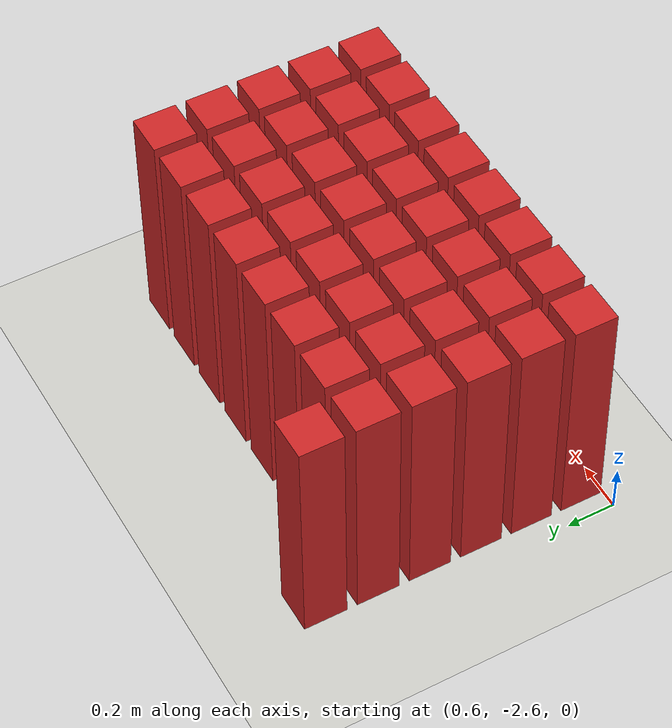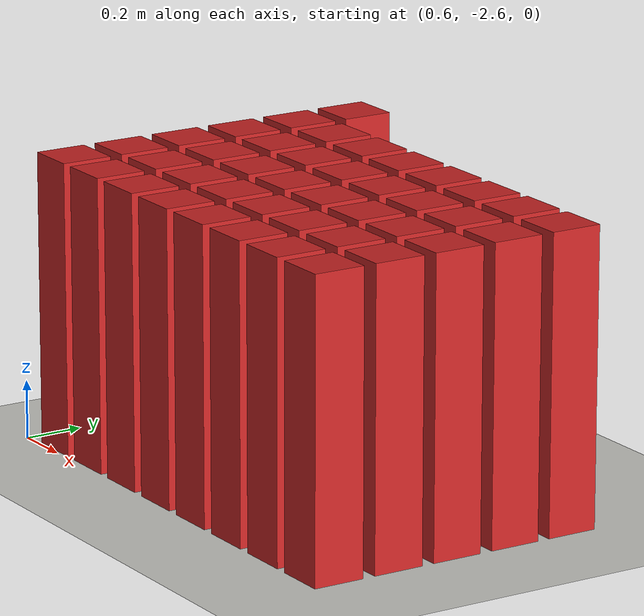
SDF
<sdf version="1.7">
 <world name="default">
  <model name="ground_plane">
   <static>1</static>
   <link name="link">
    <collision name="collision">
     <geometry><plane><normal>0 0 1</normal><size>100 100</size></plane></geometry>
     <surface>
      <contact><collide_bitmask>65535</collide_bitmask></contact>
      <friction><ode><mu>100</mu><mu2>50</mu2></ode></friction>
     </surface>
    </collision>
    <visual name="visual">
     <cast_shadows>0</cast_shadows>
     <geometry><plane><normal>0 0 1</normal><size>100 100</size></plane></geometry>
     <material>
      <script><uri>file://media/materials/scripts/gazebo.material</uri><name>Gazebo/CeilingTiled</name></script>
     </material>
    </visual>
   </link>
  </model>
  <model name="wall15">
   <link name="link">
    <pose>0 0 0.5 0 -0 0</pose>
    <inertial>
     <mass>0.5167</mass>
     <inertia>
      <ixx>0.000861167</ixx>
      <ixy>0</ixy>
      <ixz>0</ixz>
      <iyy>0.000861167</iyy>
      <iyz>0</iyz>
      <izz>0.000861167</izz>
     </inertia>
    </inertial>
    <collision name="collision">
     <geometry><box><size>0.21 0.21 1</size></box></geometry>
     <surface>
      <contact>
       <poissons_ratio>0.347</poissons_ratio>
       <elastic_modulus>8.8e+09</elastic_modulus>
       <ode><kp>100000</kp><kd>100</kd><max_vel>100</max_vel><min_depth>0.001</min_depth></ode>
      </contact>
      <friction>
       <torsional>
        <coefficient>1</coefficient>
        <use_patch_radius>0</use_patch_radius>
        <surface_radius>0.01</surface_radius>
       </torsional>
      </friction>
     </surface>
    </collision>
    <visual name="visual">
     <geometry><box><size>0.175 0.175 1</size></box></geometry>
     <material>
      <script><uri>file://media/materials/scripts/gazebo.material</uri><name>Gazebo/Red</name></script>
     </material>
    </visual>
   </link>
   <pose>0.76087 -2.5 0 0 -0 0</pose>
  </model>
  <model name="wall16">
   <link name="link">
    <pose>0 0 0.5 0 -0 0</pose>
    <inertial>
     <mass>0.5167</mass>
     <inertia>
      <ixx>0.000861167</ixx>
      <ixy>0</ixy>
      <ixz>0</ixz>
      <iyy>0.000861167</iyy>
      <iyz>0</iyz>
      <izz>0.000861167</izz>
     </inertia>
    </inertial>
    <collision name="collision">
     <geometry><box><size>0.21 0.21 1</size></box></geometry>
     <surface>
      <contact>
       <poissons_ratio>0.347</poissons_ratio>
       <elastic_modulus>8.8e+09</elastic_modulus>
       <ode><kp>100000</kp><kd>100</kd><max_vel>100</max_vel><min_depth>0.001</min_depth></ode>
      </contact>
      <friction>
       <torsional>
        <coefficient>1</coefficient>
        <use_patch_radius>0</use_patch_radius>
        <surface_radius>0.01</surface_radius>
       </torsional>
      </friction>
     </surface>
    </collision>
    <visual name="visual">
     <geometry><box><size>0.175 0.175 1</size></box></geometry>
     <material>
      <script><uri>file://media/materials/scripts/gazebo.material</uri><name>Gazebo/Red</name></script>
     </material>
    </visual>
   </link>
   <pose>0.978261 -2.5 0 0 -0 0</pose>
  </model>
  <model name="wall17">
   <link name="link">
    <pose>0 0 0.5 0 -0 0</pose>
    <inertial>
     <mass>0.5167</mass>
     <inertia>
      <ixx>0.000861167</ixx>
      <ixy>0</ixy>
      <ixz>0</ixz>
      <iyy>0.000861167</iyy>
      <iyz>0</iyz>
      <izz>0.000861167</izz>
     </inertia>
    </inertial>
    <collision name="collision">
     <geometry><box><size>0.21 0.21 1</size></box></geometry>
     <surface>
      <contact>
       <poissons_ratio>0.347</poissons_ratio>
       <elastic_modulus>8.8e+09</elastic_modulus>
       <ode><kp>100000</kp><kd>100</kd><max_vel>100</max_vel><min_depth>0.001</min_depth></ode>
      </contact>
      <friction>
       <torsional>
        <coefficient>1</coefficient>
        <use_patch_radius>0</use_patch_radius>
        <surface_radius>0.01</surface_radius>
       </torsional>
      </friction>
     </surface>
    </collision>
    <visual name="visual">
     <geometry><box><size>0.175 0.175 1</size></box></geometry>
     <material>
      <script><uri>file://media/materials/scripts/gazebo.material</uri><name>Gazebo/Red</name></script>
     </material>
    </visual>
   </link>
   <pose>1.19565 -2.5 0 0 -0 0</pose>
  </model>
  <model name="wall18">
   <link name="link">
    <pose>0 0 0.5 0 -0 0</pose>
    <inertial>
     <mass>0.5167</mass>
     <inertia>
      <ixx>0.000861167</ixx>
      <ixy>0</ixy>
      <ixz>0</ixz>
      <iyy>0.000861167</iyy>
      <iyz>0</iyz>
      <izz>0.000861167</izz>
     </inertia>
    </inertial>
    <collision name="collision">
     <geometry><box><size>0.21 0.21 1</size></box></geometry>
     <surface>
      <contact>
       <poissons_ratio>0.347</poissons_ratio>
       <elastic_modulus>8.8e+09</elastic_modulus>
       <ode><kp>100000</kp><kd>100</kd><max_vel>100</max_vel><min_depth>0.001</min_depth></ode>
      </contact>
      <friction>
       <torsional>
        <coefficient>1</coefficient>
        <use_patch_radius>0</use_patch_radius>
        <surface_radius>0.01</surface_radius>
       </torsional>
      </friction>
     </surface>
    </collision>
    <visual name="visual">
     <geometry><box><size>0.175 0.175 1</size></box></geometry>
     <material>
      <script><uri>file://media/materials/scripts/gazebo.material</uri><name>Gazebo/Red</name></script>
     </material>
    </visual>
   </link>
   <pose>1.41304 -2.5 0 0 -0 0</pose>
  </model>
  <model name="wall19">
   <link name="link">
    <pose>0 0 0.5 0 -0 0</pose>
    <inertial>
     <mass>0.5167</mass>
     <inertia>
      <ixx>0.000861167</ixx>
      <ixy>0</ixy>
      <ixz>0</ixz>
      <iyy>0.000861167</iyy>
      <iyz>0</iyz>
      <izz>0.000861167</izz>
     </inertia>
    </inertial>
    <collision name="collision">
     <geometry><box><size>0.21 0.21 1</size></box></geometry>
     <surface>
      <contact>
       <poissons_ratio>0.347</poissons_ratio>
       <elastic_modulus>8.8e+09</elastic_modulus>
       <ode><kp>100000</kp><kd>100</kd><max_vel>100</max_vel><min_depth>0.001</min_depth></ode>
      </contact>
      <friction>
       <torsional>
        <coefficient>1</coefficient>
        <use_patch_radius>0</use_patch_radius>
        <surface_radius>0.01</surface_radius>
       </torsional>
      </friction>
     </surface>
    </collision>
    <visual name="visual">
     <geometry><box><size>0.175 0.175 1</size></box></geometry>
     <material>
      <script><uri>file://media/materials/scripts/gazebo.material</uri><name>Gazebo/Red</name></script>
     </material>
    </visual>
   </link>
   <pose>1.63043 -2.5 0 0 -0 0</pose>
  </model>
  <model name="wall20">
   <link name="link">
    <pose>0 0 0.5 0 -0 0</pose>
    <inertial>
     <mass>0.5167</mass>
     <inertia>
      <ixx>0.000861167</ixx>
      <ixy>0</ixy>
      <ixz>0</ixz>
      <iyy>0.000861167</iyy>
      <iyz>0</iyz>
      <izz>0.000861167</izz>
     </inertia>
    </inertial>
    <collision name="collision">
     <geometry><box><size>0.21 0.21 1</size></box></geometry>
     <surface>
      <contact>
       <poissons_ratio>0.347</poissons_ratio>
       <elastic_modulus>8.8e+09</elastic_modulus>
       <ode><kp>100000</kp><kd>100</kd><max_vel>100</max_vel><min_depth>0.001</min_depth></ode>
      </contact>
      <friction>
       <torsional>
        <coefficient>1</coefficient>
        <use_patch_radius>0</use_patch_radius>
        <surface_radius>0.01</surface_radius>
       </torsional>
      </friction>
     </surface>
    </collision>
    <visual name="visual">
     <geometry><box><size>0.175 0.175 1</size></box></geometry>
     <material>
      <script><uri>file://media/materials/scripts/gazebo.material</uri><name>Gazebo/Red</name></script>
     </material>
    </visual>
   </link>
   <pose>1.84783 -2.5 0 0 -0 0</pose>
  </model>
  <model name="wall21">
   <link name="link">
    <pose>0 0 0.5 0 -0 0</pose>
    <inertial>
     <mass>0.5167</mass>
     <inertia>
      <ixx>0.000861167</ixx>
      <ixy>0</ixy>
      <ixz>0</ixz>
      <iyy>0.000861167</iyy>
      <iyz>0</iyz>
      <izz>0.000861167</izz>
     </inertia>
    </inertial>
    <collision name="collision">
     <geometry><box><size>0.21 0.21 1</size></box></geometry>
     <surface>
      <contact>
       <poissons_ratio>0.347</poissons_ratio>
       <elastic_modulus>8.8e+09</elastic_modulus>
       <ode><kp>100000</kp><kd>100</kd><max_vel>100</max_vel><min_depth>0.001</min_depth></ode>
      </contact>
      <friction>
       <torsional>
        <coefficient>1</coefficient>
        <use_patch_radius>0</use_patch_radius>
        <surface_radius>0.01</surface_radius>
       </torsional>
      </friction>
     </surface>
    </collision>
    <visual name="visual">
     <geometry><box><size>0.175 0.175 1</size></box></geometry>
     <material>
      <script><uri>file://media/materials/scripts/gazebo.material</uri><name>Gazebo/Red</name></script>
     </material>
    </visual>
   </link>
   <pose>2.06522 -2.5 0 0 -0 0</pose>
  </model>
  <model name="wall22">
   <link name="link">
    <pose>0 0 0.5 0 -0 0</pose>
    <inertial>
     <mass>0.5167</mass>
     <inertia>
      <ixx>0.000861167</ixx>
      <ixy>0</ixy>
      <ixz>0</ixz>
      <iyy>0.000861167</iyy>
      <iyz>0</iyz>
      <izz>0.000861167</izz>
     </inertia>
    </inertial>
    <collision name="collision">
     <geometry><box><size>0.21 0.21 1</size></box></geometry>
     <surface>
      <contact>
       <poissons_ratio>0.347</poissons_ratio>
       <elastic_modulus>8.8e+09</elastic_modulus>
       <ode><kp>100000</kp><kd>100</kd><max_vel>100</max_vel><min_depth>0.001</min_depth></ode>
      </contact>
      <friction>
       <torsional>
        <coefficient>1</coefficient>
        <use_patch_radius>0</use_patch_radius>
        <surface_radius>0.01</surface_radius>
       </torsional>
      </friction>
     </surface>
    </collision>
    <visual name="visual">
     <geometry><box><size>0.175 0.175 1</size></box></geometry>
     <material>
      <script><uri>file://media/materials/scripts/gazebo.material</uri><name>Gazebo/Red</name></script>
     </material>
    </visual>
   </link>
   <pose>2.28261 -2.5 0 0 -0 0</pose>
  </model>
  <model name="wall38">
   <link name="link">
    <pose>0 0 0.5 0 -0 0</pose>
    <inertial>
     <mass>0.5167</mass>
     <inertia>
      <ixx>0.000861167</ixx>
      <ixy>0</ixy>
      <ixz>0</ixz>
      <iyy>0.000861167</iyy>
      <iyz>0</iyz>
      <izz>0.000861167</izz>
     </inertia>
    </inertial>
    <collision name="collision">
     <geometry><box><size>0.21 0.21 1</size></box></geometry>
     <surface>
      <contact>
       <poissons_ratio>0.347</poissons_ratio>
       <elastic_modulus>8.8e+09</elastic_modulus>
       <ode><kp>100000</kp><kd>100</kd><max_vel>100</max_vel><min_depth>0.001</min_depth></ode>
      </contact>
      <friction>
       <torsional>
        <coefficient>1</coefficient>
        <use_patch_radius>0</use_patch_radius>
        <surface_radius>0.01</surface_radius>
       </torsional>
      </friction>
     </surface>
    </collision>
    <visual name="visual">
     <geometry><box><size>0.175 0.175 1</size></box></geometry>
     <material>
      <script><uri>file://media/materials/scripts/gazebo.material</uri><name>Gazebo/Red</name></script>
     </material>
    </visual>
   </link>
   <pose>0.76087 -2.28261 0 0 -0 0</pose>
  </model>
  <model name="wall39">
   <link name="link">
    <pose>0 0 0.5 0 -0 0</pose>
    <inertial>
     <mass>0.5167</mass>
     <inertia>
      <ixx>0.000861167</ixx>
      <ixy>0</ixy>
      <ixz>0</ixz>
      <iyy>0.000861167</iyy>
      <iyz>0</iyz>
      <izz>0.000861167</izz>
     </inertia>
    </inertial>
    <collision name="collision">
     <geometry><box><size>0.21 0.21 1</size></box></geometry>
     <surface>
      <contact>
       <poissons_ratio>0.347</poissons_ratio>
       <elastic_modulus>8.8e+09</elastic_modulus>
       <ode><kp>100000</kp><kd>100</kd><max_vel>100</max_vel><min_depth>0.001</min_depth></ode>
      </contact>
      <friction>
       <torsional>
        <coefficient>1</coefficient>
        <use_patch_radius>0</use_patch_radius>
        <surface_radius>0.01</surface_radius>
       </torsional>
      </friction>
     </surface>
    </collision>
    <visual name="visual">
     <geometry><box><size>0.175 0.175 1</size></box></geometry>
     <material>
      <script><uri>file://media/materials/scripts/gazebo.material</uri><name>Gazebo/Red</name></script>
     </material>
    </visual>
   </link>
   <pose>0.978261 -2.28261 0 0 -0 0</pose>
  </model>
  <model name="wall40">
   <link name="link">
    <pose>0 0 0.5 0 -0 0</pose>
    <inertial>
     <mass>0.5167</mass>
     <inertia>
      <ixx>0.000861167</ixx>
      <ixy>0</ixy>
      <ixz>0</ixz>
      <iyy>0.000861167</iyy>
      <iyz>0</iyz>
      <izz>0.000861167</izz>
     </inertia>
    </inertial>
    <collision name="collision">
     <geometry><box><size>0.21 0.21 1</size></box></geometry>
     <surface>
      <contact>
       <poissons_ratio>0.347</poissons_ratio>
       <elastic_modulus>8.8e+09</elastic_modulus>
       <ode><kp>100000</kp><kd>100</kd><max_vel>100</max_vel><min_depth>0.001</min_depth></ode>
      </contact>
      <friction>
       <torsional>
        <coefficient>1</coefficient>
        <use_patch_radius>0</use_patch_radius>
        <surface_radius>0.01</surface_radius>
       </torsional>
      </friction>
     </surface>
    </collision>
    <visual name="visual">
     <geometry><box><size>0.175 0.175 1</size></box></geometry>
     <material>
      <script><uri>file://media/materials/scripts/gazebo.material</uri><name>Gazebo/Red</name></script>
     </material>
    </visual>
   </link>
   <pose>1.19565 -2.28261 0 0 -0 0</pose>
  </model>
  <model name="wall41">
   <link name="link">
    <pose>0 0 0.5 0 -0 0</pose>
    <inertial>
     <mass>0.5167</mass>
     <inertia>
      <ixx>0.000861167</ixx>
      <ixy>0</ixy>
      <ixz>0</ixz>
      <iyy>0.000861167</iyy>
      <iyz>0</iyz>
      <izz>0.000861167</izz>
     </inertia>
    </inertial>
    <collision name="collision">
     <geometry><box><size>0.21 0.21 1</size></box></geometry>
     <surface>
      <contact>
       <poissons_ratio>0.347</poissons_ratio>
       <elastic_modulus>8.8e+09</elastic_modulus>
       <ode><kp>100000</kp><kd>100</kd><max_vel>100</max_vel><min_depth>0.001</min_depth></ode>
      </contact>
      <friction>
       <torsional>
        <coefficient>1</coefficient>
        <use_patch_radius>0</use_patch_radius>
        <surface_radius>0.01</surface_radius>
       </torsional>
      </friction>
     </surface>
    </collision>
    <visual name="visual">
     <geometry><box><size>0.175 0.175 1</size></box></geometry>
     <material>
      <script><uri>file://media/materials/scripts/gazebo.material</uri><name>Gazebo/Red</name></script>
     </material>
    </visual>
   </link>
   <pose>1.41304 -2.28261 0 0 -0 0</pose>
  </model>
  <model name="wall42">
   <link name="link">
    <pose>0 0 0.5 0 -0 0</pose>
    <inertial>
     <mass>0.5167</mass>
     <inertia>
      <ixx>0.000861167</ixx>
      <ixy>0</ixy>
      <ixz>0</ixz>
      <iyy>0.000861167</iyy>
      <iyz>0</iyz>
      <izz>0.000861167</izz>
     </inertia>
    </inertial>
    <collision name="collision">
     <geometry><box><size>0.21 0.21 1</size></box></geometry>
     <surface>
      <contact>
       <poissons_ratio>0.347</poissons_ratio>
       <elastic_modulus>8.8e+09</elastic_modulus>
       <ode><kp>100000</kp><kd>100</kd><max_vel>100</max_vel><min_depth>0.001</min_depth></ode>
      </contact>
      <friction>
       <torsional>
        <coefficient>1</coefficient>
        <use_patch_radius>0</use_patch_radius>
        <surface_radius>0.01</surface_radius>
       </torsional>
      </friction>
     </surface>
    </collision>
    <visual name="visual">
     <geometry><box><size>0.175 0.175 1</size></box></geometry>
     <material>
      <script><uri>file://media/materials/scripts/gazebo.material</uri><name>Gazebo/Red</name></script>
     </material>
    </visual>
   </link>
   <pose>1.63043 -2.28261 0 0 -0 0</pose>
  </model>
  <model name="wall43">
   <link name="link">
    <pose>0 0 0.5 0 -0 0</pose>
    <inertial>
     <mass>0.5167</mass>
     <inertia>
      <ixx>0.000861167</ixx>
      <ixy>0</ixy>
      <ixz>0</ixz>
      <iyy>0.000861167</iyy>
      <iyz>0</iyz>
      <izz>0.000861167</izz>
     </inertia>
    </inertial>
    <collision name="collision">
     <geometry><box><size>0.21 0.21 1</size></box></geometry>
     <surface>
      <contact>
       <poissons_ratio>0.347</poissons_ratio>
       <elastic_modulus>8.8e+09</elastic_modulus>
       <ode><kp>100000</kp><kd>100</kd><max_vel>100</max_vel><min_depth>0.001</min_depth></ode>
      </contact>
      <friction>
       <torsional>
        <coefficient>1</coefficient>
        <use_patch_radius>0</use_patch_radius>
        <surface_radius>0.01</surface_radius>
       </torsional>
      </friction>
     </surface>
    </collision>
    <visual name="visual">
     <geometry><box><size>0.175 0.175 1</size></box></geometry>
     <material>
      <script><uri>file://media/materials/scripts/gazebo.material</uri><name>Gazebo/Red</name></script>
     </material>
    </visual>
   </link>
   <pose>1.84783 -2.28261 0 0 -0 0</pose>
  </model>
  <model name="wall44">
   <link name="link">
    <pose>0 0 0.5 0 -0 0</pose>
    <inertial>
     <mass>0.5167</mass>
     <inertia>
      <ixx>0.000861167</ixx>
      <ixy>0</ixy>
      <ixz>0</ixz>
      <iyy>0.000861167</iyy>
      <iyz>0</iyz>
      <izz>0.000861167</izz>
     </inertia>
    </inertial>
    <collision name="collision">
     <geometry><box><size>0.21 0.21 1</size></box></geometry>
     <surface>
      <contact>
       <poissons_ratio>0.347</poissons_ratio>
       <elastic_modulus>8.8e+09</elastic_modulus>
       <ode><kp>100000</kp><kd>100</kd><max_vel>100</max_vel><min_depth>0.001</min_depth></ode>
      </contact>
      <friction>
       <torsional>
        <coefficient>1</coefficient>
        <use_patch_radius>0</use_patch_radius>
        <surface_radius>0.01</surface_radius>
       </torsional>
      </friction>
     </surface>
    </collision>
    <visual name="visual">
     <geometry><box><size>0.175 0.175 1</size></box></geometry>
     <material>
      <script><uri>file://media/materials/scripts/gazebo.material</uri><name>Gazebo/Red</name></script>
     </material>
    </visual>
   </link>
   <pose>2.06522 -2.28261 0 0 -0 0</pose>
  </model>
  <model name="wall45">
   <link name="link">
    <pose>0 0 0.5 0 -0 0</pose>
    <inertial>
     <mass>0.5167</mass>
     <inertia>
      <ixx>0.000861167</ixx>
      <ixy>0</ixy>
      <ixz>0</ixz>
      <iyy>0.000861167</iyy>
      <iyz>0</iyz>
      <izz>0.000861167</izz>
     </inertia>
    </inertial>
    <collision name="collision">
     <geometry><box><size>0.21 0.21 1</size></box></geometry>
     <surface>
      <contact>
       <poissons_ratio>0.347</poissons_ratio>
       <elastic_modulus>8.8e+09</elastic_modulus>
       <ode><kp>100000</kp><kd>100</kd><max_vel>100</max_vel><min_depth>0.001</min_depth></ode>
      </contact>
      <friction>
       <torsional>
        <coefficient>1</coefficient>
        <use_patch_radius>0</use_patch_radius>
        <surface_radius>0.01</surface_radius>
       </torsional>
      </friction>
     </surface>
    </collision>
    <visual name="visual">
     <geometry><box><size>0.175 0.175 1</size></box></geometry>
     <material>
      <script><uri>file://media/materials/scripts/gazebo.material</uri><name>Gazebo/Red</name></script>
     </material>
    </visual>
   </link>
   <pose>2.28261 -2.28261 0 0 -0 0</pose>
  </model>
  <model name="wall61">
   <link name="link">
    <pose>0 0 0.5 0 -0 0</pose>
    <inertial>
     <mass>0.5167</mass>
     <inertia>
      <ixx>0.000861167</ixx>
      <ixy>0</ixy>
      <ixz>0</ixz>
      <iyy>0.000861167</iyy>
      <iyz>0</iyz>
      <izz>0.000861167</izz>
     </inertia>
    </inertial>
    <collision name="collision">
     <geometry><box><size>0.21 0.21 1</size></box></geometry>
     <surface>
      <contact>
       <poissons_ratio>0.347</poissons_ratio>
       <elastic_modulus>8.8e+09</elastic_modulus>
       <ode><kp>100000</kp><kd>100</kd><max_vel>100</max_vel><min_depth>0.001</min_depth></ode>
      </contact>
      <friction>
       <torsional>
        <coefficient>1</coefficient>
        <use_patch_radius>0</use_patch_radius>
        <surface_radius>0.01</surface_radius>
       </torsional>
      </friction>
     </surface>
    </collision>
    <visual name="visual">
     <geometry><box><size>0.175 0.175 1</size></box></geometry>
     <material>
      <script><uri>file://media/materials/scripts/gazebo.material</uri><name>Gazebo/Red</name></script>
     </material>
    </visual>
   </link>
   <pose>0.76087 -2.06522 0 0 -0 0</pose>
  </model>
  <model name="wall62">
   <link name="link">
    <pose>0 0 0.5 0 -0 0</pose>
    <inertial>
     <mass>0.5167</mass>
     <inertia>
      <ixx>0.000861167</ixx>
      <ixy>0</ixy>
      <ixz>0</ixz>
      <iyy>0.000861167</iyy>
      <iyz>0</iyz>
      <izz>0.000861167</izz>
     </inertia>
    </inertial>
    <collision name="collision">
     <geometry><box><size>0.21 0.21 1</size></box></geometry>
     <surface>
      <contact>
       <poissons_ratio>0.347</poissons_ratio>
       <elastic_modulus>8.8e+09</elastic_modulus>
       <ode><kp>100000</kp><kd>100</kd><max_vel>100</max_vel><min_depth>0.001</min_depth></ode>
      </contact>
      <friction>
       <torsional>
        <coefficient>1</coefficient>
        <use_patch_radius>0</use_patch_radius>
        <surface_radius>0.01</surface_radius>
       </torsional>
      </friction>
     </surface>
    </collision>
    <visual name="visual">
     <geometry><box><size>0.175 0.175 1</size></box></geometry>
     <material>
      <script><uri>file://media/materials/scripts/gazebo.material</uri><name>Gazebo/Red</name></script>
     </material>
    </visual>
   </link>
   <pose>0.978261 -2.06522 0 0 -0 0</pose>
  </model>
  <model name="wall63">
   <link name="link">
    <pose>0 0 0.5 0 -0 0</pose>
    <inertial>
     <mass>0.5167</mass>
     <inertia>
      <ixx>0.000861167</ixx>
      <ixy>0</ixy>
      <ixz>0</ixz>
      <iyy>0.000861167</iyy>
      <iyz>0</iyz>
      <izz>0.000861167</izz>
     </inertia>
    </inertial>
    <collision name="collision">
     <geometry><box><size>0.21 0.21 1</size></box></geometry>
     <surface>
      <contact>
       <poissons_ratio>0.347</poissons_ratio>
       <elastic_modulus>8.8e+09</elastic_modulus>
       <ode><kp>100000</kp><kd>100</kd><max_vel>100</max_vel><min_depth>0.001</min_depth></ode>
      </contact>
      <friction>
       <torsional>
        <coefficient>1</coefficient>
        <use_patch_radius>0</use_patch_radius>
        <surface_radius>0.01</surface_radius>
       </torsional>
      </friction>
     </surface>
    </collision>
    <visual name="visual">
     <geometry><box><size>0.175 0.175 1</size></box></geometry>
     <material>
      <script><uri>file://media/materials/scripts/gazebo.material</uri><name>Gazebo/Red</name></script>
     </material>
    </visual>
   </link>
   <pose>1.19565 -2.06522 0 0 -0 0</pose>
  </model>
  <model name="wall64">
   <link name="link">
    <pose>0 0 0.5 0 -0 0</pose>
    <inertial>
     <mass>0.5167</mass>
     <inertia>
      <ixx>0.000861167</ixx>
      <ixy>0</ixy>
      <ixz>0</ixz>
      <iyy>0.000861167</iyy>
      <iyz>0</iyz>
      <izz>0.000861167</izz>
     </inertia>
    </inertial>
    <collision name="collision">
     <geometry><box><size>0.21 0.21 1</size></box></geometry>
     <surface>
      <contact>
       <poissons_ratio>0.347</poissons_ratio>
       <elastic_modulus>8.8e+09</elastic_modulus>
       <ode><kp>100000</kp><kd>100</kd><max_vel>100</max_vel><min_depth>0.001</min_depth></ode>
      </contact>
      <friction>
       <torsional>
        <coefficient>1</coefficient>
        <use_patch_radius>0</use_patch_radius>
        <surface_radius>0.01</surface_radius>
       </torsional>
      </friction>
     </surface>
    </collision>
    <visual name="visual">
     <geometry><box><size>0.175 0.175 1</size></box></geometry>
     <material>
      <script><uri>file://media/materials/scripts/gazebo.material</uri><name>Gazebo/Red</name></script>
     </material>
    </visual>
   </link>
   <pose>1.41304 -2.06522 0 0 -0 0</pose>
  </model>
  <model name="wall65">
   <link name="link">
    <pose>0 0 0.5 0 -0 0</pose>
    <inertial>
     <mass>0.5167</mass>
     <inertia>
      <ixx>0.000861167</ixx>
      <ixy>0</ixy>
      <ixz>0</ixz>
      <iyy>0.000861167</iyy>
      <iyz>0</iyz>
      <izz>0.000861167</izz>
     </inertia>
    </inertial>
    <collision name="collision">
     <geometry><box><size>0.21 0.21 1</size></box></geometry>
     <surface>
      <contact>
       <poissons_ratio>0.347</poissons_ratio>
       <elastic_modulus>8.8e+09</elastic_modulus>
       <ode><kp>100000</kp><kd>100</kd><max_vel>100</max_vel><min_depth>0.001</min_depth></ode>
      </contact>
      <friction>
       <torsional>
        <coefficient>1</coefficient>
        <use_patch_radius>0</use_patch_radius>
        <surface_radius>0.01</surface_radius>
       </torsional>
      </friction>
     </surface>
    </collision>
    <visual name="visual">
     <geometry><box><size>0.175 0.175 1</size></box></geometry>
     <material>
      <script><uri>file://media/materials/scripts/gazebo.material</uri><name>Gazebo/Red</name></script>
     </material>
    </visual>
   </link>
   <pose>1.63043 -2.06522 0 0 -0 0</pose>
  </model>
  <model name="wall66">
   <link name="link">
    <pose>0 0 0.5 0 -0 0</pose>
    <inertial>
     <mass>0.5167</mass>
     <inertia>
      <ixx>0.000861167</ixx>
      <ixy>0</ixy>
      <ixz>0</ixz>
      <iyy>0.000861167</iyy>
      <iyz>0</iyz>
      <izz>0.000861167</izz>
     </inertia>
    </inertial>
    <collision name="collision">
     <geometry><box><size>0.21 0.21 1</size></box></geometry>
     <surface>
      <contact>
       <poissons_ratio>0.347</poissons_ratio>
       <elastic_modulus>8.8e+09</elastic_modulus>
       <ode><kp>100000</kp><kd>100</kd><max_vel>100</max_vel><min_depth>0.001</min_depth></ode>
      </contact>
      <friction>
       <torsional>
        <coefficient>1</coefficient>
        <use_patch_radius>0</use_patch_radius>
        <surface_radius>0.01</surface_radius>
       </torsional>
      </friction>
     </surface>
    </collision>
    <visual name="visual">
     <geometry><box><size>0.175 0.175 1</size></box></geometry>
     <material>
      <script><uri>file://media/materials/scripts/gazebo.material</uri><name>Gazebo/Red</name></script>
     </material>
    </visual>
   </link>
   <pose>1.84783 -2.06522 0 0 -0 0</pose>
  </model>
  <model name="wall67">
   <link name="link">
    <pose>0 0 0.5 0 -0 0</pose>
    <inertial>
     <mass>0.5167</mass>
     <inertia>
      <ixx>0.000861167</ixx>
      <ixy>0</ixy>
      <ixz>0</ixz>
      <iyy>0.000861167</iyy>
      <iyz>0</iyz>
      <izz>0.000861167</izz>
     </inertia>
    </inertial>
    <collision name="collision">
     <geometry><box><size>0.21 0.21 1</size></box></geometry>
     <surface>
      <contact>
       <poissons_ratio>0.347</poissons_ratio>
       <elastic_modulus>8.8e+09</elastic_modulus>
       <ode><kp>100000</kp><kd>100</kd><max_vel>100</max_vel><min_depth>0.001</min_depth></ode>
      </contact>
      <friction>
       <torsional>
        <coefficient>1</coefficient>
        <use_patch_radius>0</use_patch_radius>
        <surface_radius>0.01</surface_radius>
       </torsional>
      </friction>
     </surface>
    </collision>
    <visual name="visual">
     <geometry><box><size>0.175 0.175 1</size></box></geometry>
     <material>
      <script><uri>file://media/materials/scripts/gazebo.material</uri><name>Gazebo/Red</name></script>
     </material>
    </visual>
   </link>
   <pose>2.06522 -2.06522 0 0 -0 0</pose>
  </model>
  <model name="wall68">
   <link name="link">
    <pose>0 0 0.5 0 -0 0</pose>
    <inertial>
     <mass>0.5167</mass>
     <inertia>
      <ixx>0.000861167</ixx>
      <ixy>0</ixy>
      <ixz>0</ixz>
      <iyy>0.000861167</iyy>
      <iyz>0</iyz>
      <izz>0.000861167</izz>
     </inertia>
    </inertial>
    <collision name="collision">
     <geometry><box><size>0.21 0.21 1</size></box></geometry>
     <surface>
      <contact>
       <poissons_ratio>0.347</poissons_ratio>
       <elastic_modulus>8.8e+09</elastic_modulus>
       <ode><kp>100000</kp><kd>100</kd><max_vel>100</max_vel><min_depth>0.001</min_depth></ode>
      </contact>
      <friction>
       <torsional>
        <coefficient>1</coefficient>
        <use_patch_radius>0</use_patch_radius>
        <surface_radius>0.01</surface_radius>
       </torsional>
      </friction>
     </surface>
    </collision>
    <visual name="visual">
     <geometry><box><size>0.175 0.175 1</size></box></geometry>
     <material>
      <script><uri>file://media/materials/scripts/gazebo.material</uri><name>Gazebo/Red</name></script>
     </material>
    </visual>
   </link>
   <pose>2.28261 -2.06522 0 0 -0 0</pose>
  </model>
  <model name="wall84">
   <link name="link">
    <pose>0 0 0.5 0 -0 0</pose>
    <inertial>
     <mass>0.5167</mass>
     <inertia>
      <ixx>0.000861167</ixx>
      <ixy>0</ixy>
      <ixz>0</ixz>
      <iyy>0.000861167</iyy>
      <iyz>0</iyz>
      <izz>0.000861167</izz>
     </inertia>
    </inertial>
    <collision name="collision">
     <geometry><box><size>0.21 0.21 1</size></box></geometry>
     <surface>
      <contact>
       <poissons_ratio>0.347</poissons_ratio>
       <elastic_modulus>8.8e+09</elastic_modulus>
       <ode><kp>100000</kp><kd>100</kd><max_vel>100</max_vel><min_depth>0.001</min_depth></ode>
      </contact>
      <friction>
       <torsional>
        <coefficient>1</coefficient>
        <use_patch_radius>0</use_patch_radius>
        <surface_radius>0.01</surface_radius>
       </torsional>
      </friction>
     </surface>
    </collision>
    <visual name="visual">
     <geometry><box><size>0.175 0.175 1</size></box></geometry>
     <material>
      <script><uri>file://media/materials/scripts/gazebo.material</uri><name>Gazebo/Red</name></script>
     </material>
    </visual>
   </link>
   <pose>0.76087 -1.84783 0 0 -0 0</pose>
  </model>
  <model name="wall85">
   <link name="link">
    <pose>0 0 0.5 0 -0 0</pose>
    <inertial>
     <mass>0.5167</mass>
     <inertia>
      <ixx>0.000861167</ixx>
      <ixy>0</ixy>
      <ixz>0</ixz>
      <iyy>0.000861167</iyy>
      <iyz>0</iyz>
      <izz>0.000861167</izz>
     </inertia>
    </inertial>
    <collision name="collision">
     <geometry><box><size>0.21 0.21 1</size></box></geometry>
     <surface>
      <contact>
       <poissons_ratio>0.347</poissons_ratio>
       <elastic_modulus>8.8e+09</elastic_modulus>
       <ode><kp>100000</kp><kd>100</kd><max_vel>100</max_vel><min_depth>0.001</min_depth></ode>
      </contact>
      <friction>
       <torsional>
        <coefficient>1</coefficient>
        <use_patch_radius>0</use_patch_radius>
        <surface_radius>0.01</surface_radius>
       </torsional>
      </friction>
     </surface>
    </collision>
    <visual name="visual">
     <geometry><box><size>0.175 0.175 1</size></box></geometry>
     <material>
      <script><uri>file://media/materials/scripts/gazebo.material</uri><name>Gazebo/Red</name></script>
     </material>
    </visual>
   </link>
   <pose>0.978261 -1.84783 0 0 -0 0</pose>
  </model>
  <model name="wall86">
   <link name="link">
    <pose>0 0 0.5 0 -0 0</pose>
    <inertial>
     <mass>0.5167</mass>
     <inertia>
      <ixx>0.000861167</ixx>
      <ixy>0</ixy>
      <ixz>0</ixz>
      <iyy>0.000861167</iyy>
      <iyz>0</iyz>
      <izz>0.000861167</izz>
     </inertia>
    </inertial>
    <collision name="collision">
     <geometry><box><size>0.21 0.21 1</size></box></geometry>
     <surface>
      <contact>
       <poissons_ratio>0.347</poissons_ratio>
       <elastic_modulus>8.8e+09</elastic_modulus>
       <ode><kp>100000</kp><kd>100</kd><max_vel>100</max_vel><min_depth>0.001</min_depth></ode>
      </contact>
      <friction>
       <torsional>
        <coefficient>1</coefficient>
        <use_patch_radius>0</use_patch_radius>
        <surface_radius>0.01</surface_radius>
       </torsional>
      </friction>
     </surface>
    </collision>
    <visual name="visual">
     <geometry><box><size>0.175 0.175 1</size></box></geometry>
     <material>
      <script><uri>file://media/materials/scripts/gazebo.material</uri><name>Gazebo/Red</name></script>
     </material>
    </visual>
   </link>
   <pose>1.19565 -1.84783 0 0 -0 0</pose>
  </model>
  <model name="wall87">
   <link name="link">
    <pose>0 0 0.5 0 -0 0</pose>
    <inertial>
     <mass>0.5167</mass>
     <inertia>
      <ixx>0.000861167</ixx>
      <ixy>0</ixy>
      <ixz>0</ixz>
      <iyy>0.000861167</iyy>
      <iyz>0</iyz>
      <izz>0.000861167</izz>
     </inertia>
    </inertial>
    <collision name="collision">
     <geometry><box><size>0.21 0.21 1</size></box></geometry>
     <surface>
      <contact>
       <poissons_ratio>0.347</poissons_ratio>
       <elastic_modulus>8.8e+09</elastic_modulus>
       <ode><kp>100000</kp><kd>100</kd><max_vel>100</max_vel><min_depth>0.001</min_depth></ode>
      </contact>
      <friction>
       <torsional>
        <coefficient>1</coefficient>
        <use_patch_radius>0</use_patch_radius>
        <surface_radius>0.01</surface_radius>
       </torsional>
      </friction>
     </surface>
    </collision>
    <visual name="visual">
     <geometry><box><size>0.175 0.175 1</size></box></geometry>
     <material>
      <script><uri>file://media/materials/scripts/gazebo.material</uri><name>Gazebo/Red</name></script>
     </material>
    </visual>
   </link>
   <pose>1.41304 -1.84783 0 0 -0 0</pose>
  </model>
  <model name="wall88">
   <link name="link">
    <pose>0 0 0.5 0 -0 0</pose>
    <inertial>
     <mass>0.5167</mass>
     <inertia>
      <ixx>0.000861167</ixx>
      <ixy>0</ixy>
      <ixz>0</ixz>
      <iyy>0.000861167</iyy>
      <iyz>0</iyz>
      <izz>0.000861167</izz>
     </inertia>
    </inertial>
    <collision name="collision">
     <geometry><box><size>0.21 0.21 1</size></box></geometry>
     <surface>
      <contact>
       <poissons_ratio>0.347</poissons_ratio>
       <elastic_modulus>8.8e+09</elastic_modulus>
       <ode><kp>100000</kp><kd>100</kd><max_vel>100</max_vel><min_depth>0.001</min_depth></ode>
      </contact>
      <friction>
       <torsional>
        <coefficient>1</coefficient>
        <use_patch_radius>0</use_patch_radius>
        <surface_radius>0.01</surface_radius>
       </torsional>
      </friction>
     </surface>
    </collision>
    <visual name="visual">
     <geometry><box><size>0.175 0.175 1</size></box></geometry>
     <material>
      <script><uri>file://media/materials/scripts/gazebo.material</uri><name>Gazebo/Red</name></script>
     </material>
    </visual>
   </link>
   <pose>1.63043 -1.84783 0 0 -0 0</pose>
  </model>
  <model name="wall89">
   <link name="link">
    <pose>0 0 0.5 0 -0 0</pose>
    <inertial>
     <mass>0.5167</mass>
     <inertia>
      <ixx>0.000861167</ixx>
      <ixy>0</ixy>
      <ixz>0</ixz>
      <iyy>0.000861167</iyy>
      <iyz>0</iyz>
      <izz>0.000861167</izz>
     </inertia>
    </inertial>
    <collision name="collision">
     <geometry><box><size>0.21 0.21 1</size></box></geometry>
     <surface>
      <contact>
       <poissons_ratio>0.347</poissons_ratio>
       <elastic_modulus>8.8e+09</elastic_modulus>
       <ode><kp>100000</kp><kd>100</kd><max_vel>100</max_vel><min_depth>0.001</min_depth></ode>
      </contact>
      <friction>
       <torsional>
        <coefficient>1</coefficient>
        <use_patch_radius>0</use_patch_radius>
        <surface_radius>0.01</surface_radius>
       </torsional>
      </friction>
     </surface>
    </collision>
    <visual name="visual">
     <geometry><box><size>0.175 0.175 1</size></box></geometry>
     <material>
      <script><uri>file://media/materials/scripts/gazebo.material</uri><name>Gazebo/Red</name></script>
     </material>
    </visual>
   </link>
   <pose>1.84783 -1.84783 0 0 -0 0</pose>
  </model>
  <model name="wall90">
   <link name="link">
    <pose>0 0 0.5 0 -0 0</pose>
    <inertial>
     <mass>0.5167</mass>
     <inertia>
      <ixx>0.000861167</ixx>
      <ixy>0</ixy>
      <ixz>0</ixz>
      <iyy>0.000861167</iyy>
      <iyz>0</iyz>
      <izz>0.000861167</izz>
     </inertia>
    </inertial>
    <collision name="collision">
     <geometry><box><size>0.21 0.21 1</size></box></geometry>
     <surface>
      <contact>
       <poissons_ratio>0.347</poissons_ratio>
       <elastic_modulus>8.8e+09</elastic_modulus>
       <ode><kp>100000</kp><kd>100</kd><max_vel>100</max_vel><min_depth>0.001</min_depth></ode>
      </contact>
      <friction>
       <torsional>
        <coefficient>1</coefficient>
        <use_patch_radius>0</use_patch_radius>
        <surface_radius>0.01</surface_radius>
       </torsional>
      </friction>
     </surface>
    </collision>
    <visual name="visual">
     <geometry><box><size>0.175 0.175 1</size></box></geometry>
     <material>
      <script><uri>file://media/materials/scripts/gazebo.material</uri><name>Gazebo/Red</name></script>
     </material>
    </visual>
   </link>
   <pose>2.06522 -1.84783 0 0 -0 0</pose>
  </model>
  <model name="wall91">
   <link name="link">
    <pose>0 0 0.5 0 -0 0</pose>
    <inertial>
     <mass>0.5167</mass>
     <inertia>
      <ixx>0.000861167</ixx>
      <ixy>0</ixy>
      <ixz>0</ixz>
      <iyy>0.000861167</iyy>
      <iyz>0</iyz>
      <izz>0.000861167</izz>
     </inertia>
    </inertial>
    <collision name="collision">
     <geometry><box><size>0.21 0.21 1</size></box></geometry>
     <surface>
      <contact>
       <poissons_ratio>0.347</poissons_ratio>
       <elastic_modulus>8.8e+09</elastic_modulus>
       <ode><kp>100000</kp><kd>100</kd><max_vel>100</max_vel><min_depth>0.001</min_depth></ode>
      </contact>
      <friction>
       <torsional>
        <coefficient>1</coefficient>
        <use_patch_radius>0</use_patch_radius>
        <surface_radius>0.01</surface_radius>
       </torsional>
      </friction>
     </surface>
    </collision>
    <visual name="visual">
     <geometry><box><size>0.175 0.175 1</size></box></geometry>
     <material>
      <script><uri>file://media/materials/scripts/gazebo.material</uri><name>Gazebo/Red</name></script>
     </material>
    </visual>
   </link>
   <pose>2.28261 -1.84783 0 0 -0 0</pose>
  </model>
  <model name="wall107">
   <link name="link">
    <pose>0 0 0.5 0 -0 0</pose>
    <inertial>
     <mass>0.5167</mass>
     <inertia>
      <ixx>0.000861167</ixx>
      <ixy>0</ixy>
      <ixz>0</ixz>
      <iyy>0.000861167</iyy>
      <iyz>0</iyz>
      <izz>0.000861167</izz>
     </inertia>
    </inertial>
    <collision name="collision">
     <geometry><box><size>0.21 0.21 1</size></box></geometry>
     <surface>
      <contact>
       <poissons_ratio>0.347</poissons_ratio>
       <elastic_modulus>8.8e+09</elastic_modulus>
       <ode><kp>100000</kp><kd>100</kd><max_vel>100</max_vel><min_depth>0.001</min_depth></ode>
      </contact>
      <friction>
       <torsional>
        <coefficient>1</coefficient>
        <use_patch_radius>0</use_patch_radius>
        <surface_radius>0.01</surface_radius>
       </torsional>
      </friction>
     </surface>
    </collision>
    <visual name="visual">
     <geometry><box><size>0.175 0.175 1</size></box></geometry>
     <material>
      <script><uri>file://media/materials/scripts/gazebo.material</uri><name>Gazebo/Red</name></script>
     </material>
    </visual>
   </link>
   <pose>0.76087 -1.63043 0 0 -0 0</pose>
  </model>
  <model name="wall108">
   <link name="link">
    <pose>0 0 0.5 0 -0 0</pose>
    <inertial>
     <mass>0.5167</mass>
     <inertia>
      <ixx>0.000861167</ixx>
      <ixy>0</ixy>
      <ixz>0</ixz>
      <iyy>0.000861167</iyy>
      <iyz>0</iyz>
      <izz>0.000861167</izz>
     </inertia>
    </inertial>
    <collision name="collision">
     <geometry><box><size>0.21 0.21 1</size></box></geometry>
     <surface>
      <contact>
       <poissons_ratio>0.347</poissons_ratio>
       <elastic_modulus>8.8e+09</elastic_modulus>
       <ode><kp>100000</kp><kd>100</kd><max_vel>100</max_vel><min_depth>0.001</min_depth></ode>
      </contact>
      <friction>
       <torsional>
        <coefficient>1</coefficient>
        <use_patch_radius>0</use_patch_radius>
        <surface_radius>0.01</surface_radius>
       </torsional>
      </friction>
     </surface>
    </collision>
    <visual name="visual">
     <geometry><box><size>0.175 0.175 1</size></box></geometry>
     <material>
      <script><uri>file://media/materials/scripts/gazebo.material</uri><name>Gazebo/Red</name></script>
     </material>
    </visual>
   </link>
   <pose>0.978261 -1.63043 0 0 -0 0</pose>
  </model>
  <model name="wall109">
   <link name="link">
    <pose>0 0 0.5 0 -0 0</pose>
    <inertial>
     <mass>0.5167</mass>
     <inertia>
      <ixx>0.000861167</ixx>
      <ixy>0</ixy>
      <ixz>0</ixz>
      <iyy>0.000861167</iyy>
      <iyz>0</iyz>
      <izz>0.000861167</izz>
     </inertia>
    </inertial>
    <collision name="collision">
     <geometry><box><size>0.21 0.21 1</size></box></geometry>
     <surface>
      <contact>
       <poissons_ratio>0.347</poissons_ratio>
       <elastic_modulus>8.8e+09</elastic_modulus>
       <ode><kp>100000</kp><kd>100</kd><max_vel>100</max_vel><min_depth>0.001</min_depth></ode>
      </contact>
      <friction>
       <torsional>
        <coefficient>1</coefficient>
        <use_patch_radius>0</use_patch_radius>
        <surface_radius>0.01</surface_radius>
       </torsional>
      </friction>
     </surface>
    </collision>
    <visual name="visual">
     <geometry><box><size>0.175 0.175 1</size></box></geometry>
     <material>
      <script><uri>file://media/materials/scripts/gazebo.material</uri><name>Gazebo/Red</name></script>
     </material>
    </visual>
   </link>
   <pose>1.19565 -1.63043 0 0 -0 0</pose>
  </model>
  <model name="wall110">
   <link name="link">
    <pose>0 0 0.5 0 -0 0</pose>
    <inertial>
     <mass>0.5167</mass>
     <inertia>
      <ixx>0.000861167</ixx>
      <ixy>0</ixy>
      <ixz>0</ixz>
      <iyy>0.000861167</iyy>
      <iyz>0</iyz>
      <izz>0.000861167</izz>
     </inertia>
    </inertial>
    <collision name="collision">
     <geometry><box><size>0.21 0.21 1</size></box></geometry>
     <surface>
      <contact>
       <poissons_ratio>0.347</poissons_ratio>
       <elastic_modulus>8.8e+09</elastic_modulus>
       <ode><kp>100000</kp><kd>100</kd><max_vel>100</max_vel><min_depth>0.001</min_depth></ode>
      </contact>
      <friction>
       <torsional>
        <coefficient>1</coefficient>
        <use_patch_radius>0</use_patch_radius>
        <surface_radius>0.01</surface_radius>
       </torsional>
      </friction>
     </surface>
    </collision>
    <visual name="visual">
     <geometry><box><size>0.175 0.175 1</size></box></geometry>
     <material>
      <script><uri>file://media/materials/scripts/gazebo.material</uri><name>Gazebo/Red</name></script>
     </material>
    </visual>
   </link>
   <pose>1.41304 -1.63043 0 0 -0 0</pose>
  </model>
  <model name="wall111">
   <link name="link">
    <pose>0 0 0.5 0 -0 0</pose>
    <inertial>
     <mass>0.5167</mass>
     <inertia>
      <ixx>0.000861167</ixx>
      <ixy>0</ixy>
      <ixz>0</ixz>
      <iyy>0.000861167</iyy>
      <iyz>0</iyz>
      <izz>0.000861167</izz>
     </inertia>
    </inertial>
    <collision name="collision">
     <geometry><box><size>0.21 0.21 1</size></box></geometry>
     <surface>
      <contact>
       <poissons_ratio>0.347</poissons_ratio>
       <elastic_modulus>8.8e+09</elastic_modulus>
       <ode><kp>100000</kp><kd>100</kd><max_vel>100</max_vel><min_depth>0.001</min_depth></ode>
      </contact>
      <friction>
       <torsional>
        <coefficient>1</coefficient>
        <use_patch_radius>0</use_patch_radius>
        <surface_radius>0.01</surface_radius>
       </torsional>
      </friction>
     </surface>
    </collision>
    <visual name="visual">
     <geometry><box><size>0.175 0.175 1</size></box></geometry>
     <material>
      <script><uri>file://media/materials/scripts/gazebo.material</uri><name>Gazebo/Red</name></script>
     </material>
    </visual>
   </link>
   <pose>1.63043 -1.63043 0 0 -0 0</pose>
  </model>
  <model name="wall112">
   <link name="link">
    <pose>0 0 0.5 0 -0 0</pose>
    <inertial>
     <mass>0.5167</mass>
     <inertia>
      <ixx>0.000861167</ixx>
      <ixy>0</ixy>
      <ixz>0</ixz>
      <iyy>0.000861167</iyy>
      <iyz>0</iyz>
      <izz>0.000861167</izz>
     </inertia>
    </inertial>
    <collision name="collision">
     <geometry><box><size>0.21 0.21 1</size></box></geometry>
     <surface>
      <contact>
       <poissons_ratio>0.347</poissons_ratio>
       <elastic_modulus>8.8e+09</elastic_modulus>
       <ode><kp>100000</kp><kd>100</kd><max_vel>100</max_vel><min_depth>0.001</min_depth></ode>
      </contact>
      <friction>
       <torsional>
        <coefficient>1</coefficient>
        <use_patch_radius>0</use_patch_radius>
        <surface_radius>0.01</surface_radius>
       </torsional>
      </friction>
     </surface>
    </collision>
    <visual name="visual">
     <geometry><box><size>0.175 0.175 1</size></box></geometry>
     <material>
      <script><uri>file://media/materials/scripts/gazebo.material</uri><name>Gazebo/Red</name></script>
     </material>
    </visual>
   </link>
   <pose>1.84783 -1.63043 0 0 -0 0</pose>
  </model>
  <model name="wall113">
   <link name="link">
    <pose>0 0 0.5 0 -0 0</pose>
    <inertial>
     <mass>0.5167</mass>
     <inertia>
      <ixx>0.000861167</ixx>
      <ixy>0</ixy>
      <ixz>0</ixz>
      <iyy>0.000861167</iyy>
      <iyz>0</iyz>
      <izz>0.000861167</izz>
     </inertia>
    </inertial>
    <collision name="collision">
     <geometry><box><size>0.21 0.21 1</size></box></geometry>
     <surface>
      <contact>
       <poissons_ratio>0.347</poissons_ratio>
       <elastic_modulus>8.8e+09</elastic_modulus>
       <ode><kp>100000</kp><kd>100</kd><max_vel>100</max_vel><min_depth>0.001</min_depth></ode>
      </contact>
      <friction>
       <torsional>
        <coefficient>1</coefficient>
        <use_patch_radius>0</use_patch_radius>
        <surface_radius>0.01</surface_radius>
       </torsional>
      </friction>
     </surface>
    </collision>
    <visual name="visual">
     <geometry><box><size>0.175 0.175 1</size></box></geometry>
     <material>
      <script><uri>file://media/materials/scripts/gazebo.material</uri><name>Gazebo/Red</name></script>
     </material>
    </visual>
   </link>
   <pose>2.06522 -1.63043 0 0 -0 0</pose>
  </model>
  <model name="wall114">
   <link name="link">
    <pose>0 0 0.5 0 -0 0</pose>
    <inertial>
     <mass>0.5167</mass>
     <inertia>
      <ixx>0.000861167</ixx>
      <ixy>0</ixy>
      <ixz>0</ixz>
      <iyy>0.000861167</iyy>
      <iyz>0</iyz>
      <izz>0.000861167</izz>
     </inertia>
    </inertial>
    <collision name="collision">
     <geometry><box><size>0.21 0.21 1</size></box></geometry>
     <surface>
      <contact>
       <poissons_ratio>0.347</poissons_ratio>
       <elastic_modulus>8.8e+09</elastic_modulus>
       <ode><kp>100000</kp><kd>100</kd><max_vel>100</max_vel><min_depth>0.001</min_depth></ode>
      </contact>
      <friction>
       <torsional>
        <coefficient>1</coefficient>
        <use_patch_radius>0</use_patch_radius>
        <surface_radius>0.01</surface_radius>
       </torsional>
      </friction>
     </surface>
    </collision>
    <visual name="visual">
     <geometry><box><size>0.175 0.175 1</size></box></geometry>
     <material>
      <script><uri>file://media/materials/scripts/gazebo.material</uri><name>Gazebo/Red</name></script>
     </material>
    </visual>
   </link>
   <pose>2.28261 -1.63043 0 0 -0 0</pose>
  </model>
  <model name="wall130">
   <link name="link">
    <pose>0 0 0.5 0 -0 0</pose>
    <inertial>
     <mass>0.5167</mass>
     <inertia>
      <ixx>0.000861167</ixx>
      <ixy>0</ixy>
      <ixz>0</ixz>
      <iyy>0.000861167</iyy>
      <iyz>0</iyz>
      <izz>0.000861167</izz>
     </inertia>
    </inertial>
    <collision name="collision">
     <geometry><box><size>0.21 0.21 1</size></box></geometry>
     <surface>
      <contact>
       <poissons_ratio>0.347</poissons_ratio>
       <elastic_modulus>8.8e+09</elastic_modulus>
       <ode><kp>100000</kp><kd>100</kd><max_vel>100</max_vel><min_depth>0.001</min_depth></ode>
      </contact>
      <friction>
       <torsional>
        <coefficient>1</coefficient>
        <use_patch_radius>0</use_patch_radius>
        <surface_radius>0.01</surface_radius>
       </torsional>
      </friction>
     </surface>
    </collision>
    <visual name="visual">
     <geometry><box><size>0.175 0.175 1</size></box></geometry>
     <material>
      <script><uri>file://media/materials/scripts/gazebo.material</uri><name>Gazebo/Red</name></script>
     </material>
    </visual>
   </link>
   <pose>0.76087 -1.41304 0 0 -0 0</pose>
  </model>
 </world>
</sdf>
